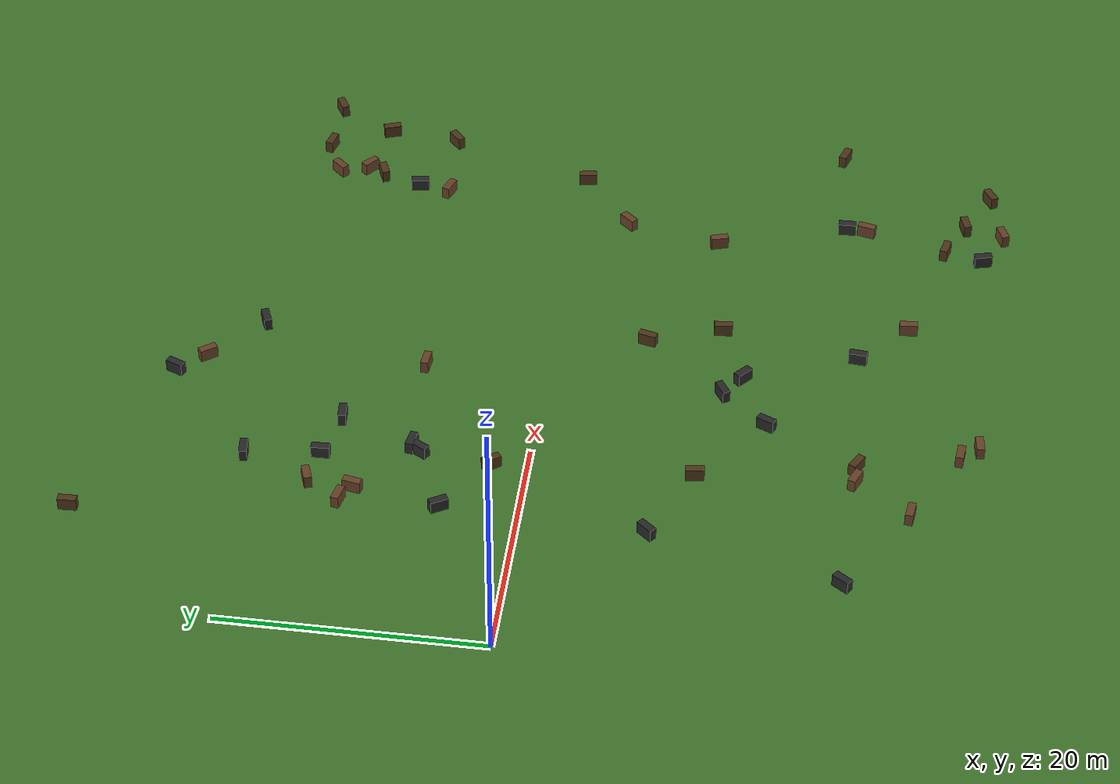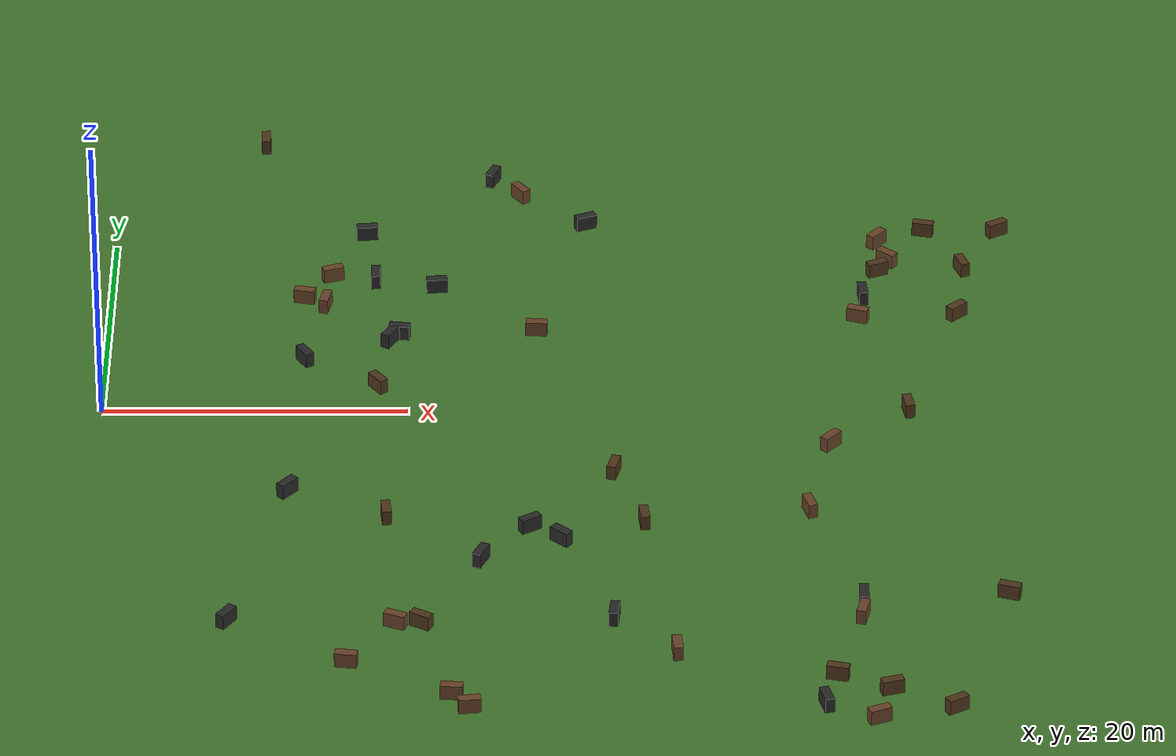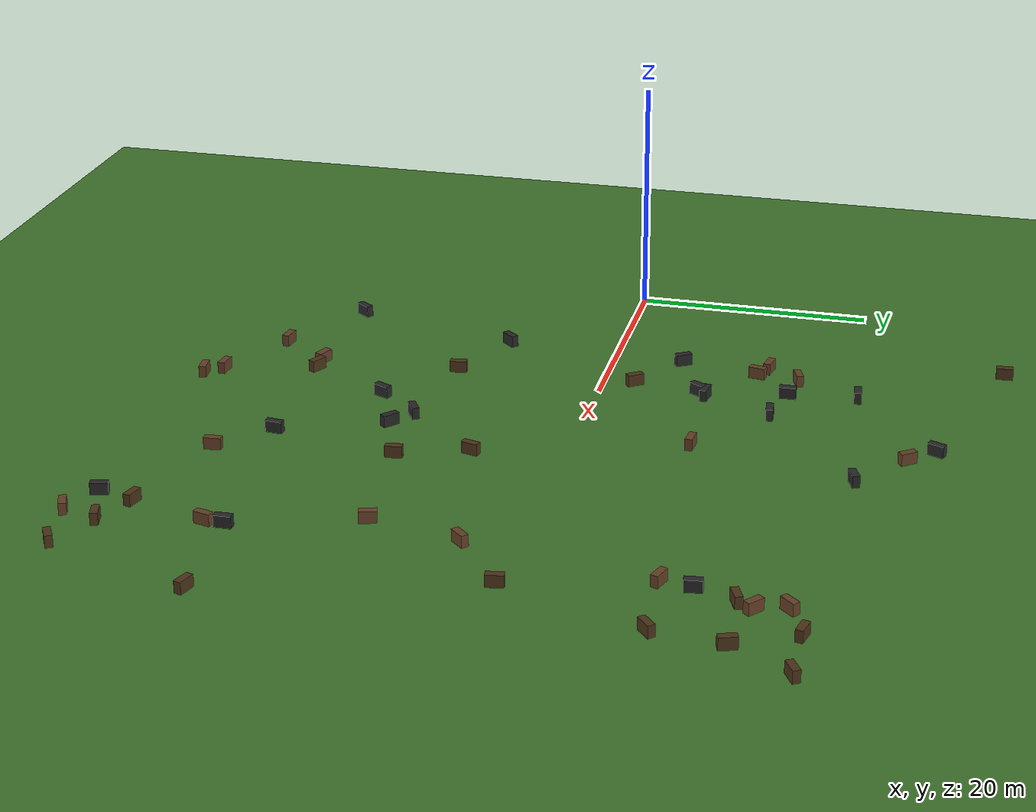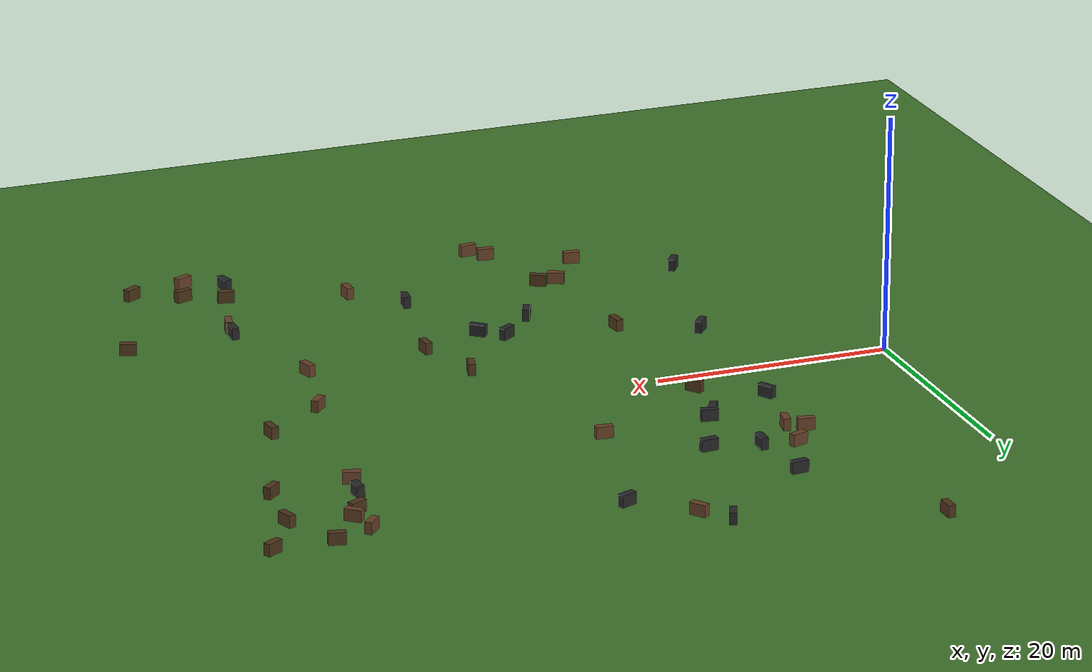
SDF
<?xml version="1.0" encoding="UTF-8"?>
<sdf version="1.9">
  <world name="aeroshepherd">
    <physics type="ode">
      <max_step_size>0.004</max_step_size>
      <real_time_factor>1.0</real_time_factor>
      <real_time_update_rate>250</real_time_update_rate>
      <gravity>0 0 -9.8</gravity>
    </physics>

    <atmosphere type="adiabatic"/>
    <scene>
      <grid>false</grid>
      <ambient>0.7 0.7 0.7 1</ambient>
      <background>0.5 0.7 0.9 1</background>
      <shadows>true</shadows>
      <fog><type>linear</type><color>0.7 0.8 0.85 1</color><start>10.0</start><end>100.0</end></fog>
    </scene>

    <light type="directional" name="sunUTC">
      <cast_shadows>true</cast_shadows>
      <diffuse>0.9 0.9 0.9 1</diffuse>
      <specular>0.2 0.2 0.2 1</specular>
      <direction>0.001 0.625 -0.78</direction>
      <pose>0 0 500 0 0 0</pose>
    </light>

    <model name="ground_plane">
      <static>true</static>
      <link name="link">
        <collision name="collision">
          <geometry><plane><normal>0 0 1</normal><size>200 200</size></plane></geometry>
        </collision>
        <visual name="visual">
          <geometry><plane><normal>0 0 1</normal><size>200 200</size></plane></geometry>
          <material>
            <ambient>0.2 0.4 0.15 1</ambient>
            <diffuse>0.25 0.45 0.17 1</diffuse>
          </material>
        </visual>
      </link>
    </model>

    <spherical_coordinates>
      <surface_model>EARTH_WGS84</surface_model>
      <world_frame_orientation>ENU</world_frame_orientation>
      <latitude_deg>47.397971057728974</latitude_deg>
      <longitude_deg>8.546163739800146</longitude_deg>
      <elevation>0</elevation>
    </spherical_coordinates>

    <model name="stado_krow">
      <static>true</static>
      <plugin filename="gz-sim-thermal-system" name="gz::sim::systems::Thermal">
        <temperature>310.15</temperature>
      </plugin>

      <link name="krowa_1">
        <pose>16.6 -28.4 0.5 0 0 -0.14</pose>
        <visual name="visual_1">
          <geometry>
            <box><size>1.4 0.6 1.0</size></box>
          </geometry>
          <material>
            <ambient>0.40 0.25 0.15 1.0</ambient>
            <diffuse>0.40 0.25 0.15 1.0</diffuse>
          </material>
        </visual>
      </link>
      <link name="krowa_2">
        <pose>50.2 13.4 0.5 0 0 -1.47</pose>
        <visual name="visual_2">
          <geometry>
            <box><size>1.4 0.6 1.0</size></box>
          </geometry>
          <material>
            <ambient>0.15 0.15 0.15 1.0</ambient>
            <diffuse>0.15 0.15 0.15 1.0</diffuse>
          </material>
        </visual>
      </link>
      <link name="krowa_3">
        <pose>59.6 21.6 0.5 0 0 0.51</pose>
        <visual name="visual_3">
          <geometry>
            <box><size>1.4 0.6 1.0</size></box>
          </geometry>
          <material>
            <ambient>0.30 0.20 0.10 1.0</ambient>
            <diffuse>0.30 0.20 0.10 1.0</diffuse>
          </material>
        </visual>
      </link>
      <link name="krowa_4">
        <pose>12.9 13.3 0.5 0 0 -0.21</pose>
        <visual name="visual_4">
          <geometry>
            <box><size>1.4 0.6 1.0</size></box>
          </geometry>
          <material>
            <ambient>0.40 0.25 0.15 1.0</ambient>
            <diffuse>0.40 0.25 0.15 1.0</diffuse>
          </material>
        </visual>
      </link>
      <link name="krowa_5">
        <pose>46.3 -32.8 0.5 0 0 -1.31</pose>
        <visual name="visual_5">
          <geometry>
            <box><size>1.4 0.6 1.0</size></box>
          </geometry>
          <material>
            <ambient>0.15 0.15 0.15 1.0</ambient>
            <diffuse>0.15 0.15 0.15 1.0</diffuse>
          </material>
        </visual>
      </link>
      <link name="krowa_6">
        <pose>9.7 32.8 0.5 0 0 1.6</pose>
        <visual name="visual_6">
          <geometry>
            <box><size>1.4 0.6 1.0</size></box>
          </geometry>
          <material>
            <ambient>0.30 0.20 0.10 1.0</ambient>
            <diffuse>0.30 0.20 0.10 1.0</diffuse>
          </material>
        </visual>
      </link>
      <link name="krowa_7">
        <pose>14.3 12.5 0.5 0 0 1.37</pose>
        <visual name="visual_7">
          <geometry>
            <box><size>1.4 0.6 1.0</size></box>
          </geometry>
          <material>
            <ambient>0.40 0.25 0.15 1.0</ambient>
            <diffuse>0.40 0.25 0.15 1.0</diffuse>
          </material>
        </visual>
      </link>
      <link name="krowa_8">
        <pose>30.0 -15.0 0.5 0 0 2.42</pose>
        <visual name="visual_8">
          <geometry>
            <box><size>1.4 0.6 1.0</size></box>
          </geometry>
          <material>
            <ambient>0.15 0.15 0.15 1.0</ambient>
            <diffuse>0.15 0.15 0.15 1.0</diffuse>
          </material>
        </visual>
      </link>
      <link name="krowa_9">
        <pose>21.2 -24.2 0.5 0 0 2.62</pose>
        <visual name="visual_9">
          <geometry>
            <box><size>1.4 0.6 1.0</size></box>
          </geometry>
          <material>
            <ambient>0.30 0.20 0.10 1.0</ambient>
            <diffuse>0.30 0.20 0.10 1.0</diffuse>
          </material>
        </visual>
      </link>
      <link name="krowa_10">
        <pose>52.0 17.9 0.5 0 0 2.43</pose>
        <visual name="visual_10">
          <geometry>
            <box><size>1.4 0.6 1.0</size></box>
          </geometry>
          <material>
            <ambient>0.40 0.25 0.15 1.0</ambient>
            <diffuse>0.40 0.25 0.15 1.0</diffuse>
          </material>
        </visual>
      </link>
      <link name="krowa_11">
        <pose>24.9 -17.2 0.5 0 0 -2.0</pose>
        <visual name="visual_11">
          <geometry>
            <box><size>1.4 0.6 1.0</size></box>
          </geometry>
          <material>
            <ambient>0.15 0.15 0.15 1.0</ambient>
            <diffuse>0.15 0.15 0.15 1.0</diffuse>
          </material>
        </visual>
      </link>
      <link name="krowa_12">
        <pose>54.6 21.6 0.5 0 0 -0.23</pose>
        <visual name="visual_12">
          <geometry>
            <box><size>1.4 0.6 1.0</size></box>
          </geometry>
          <material>
            <ambient>0.30 0.20 0.10 1.0</ambient>
            <diffuse>0.30 0.20 0.10 1.0</diffuse>
          </material>
        </visual>
      </link>
      <link name="krowa_13">
        <pose>27.3 26.2 0.5 0 0 -0.93</pose>
        <visual name="visual_13">
          <geometry>
            <box><size>1.4 0.6 1.0</size></box>
          </geometry>
          <material>
            <ambient>0.40 0.25 0.15 1.0</ambient>
            <diffuse>0.40 0.25 0.15 1.0</diffuse>
          </material>
        </visual>
      </link>
      <link name="krowa_14">
        <pose>16.9 21.2 0.5 0 0 -3.04</pose>
        <visual name="visual_14">
          <geometry>
            <box><size>1.4 0.6 1.0</size></box>
          </geometry>
          <material>
            <ambient>0.15 0.15 0.15 1.0</ambient>
            <diffuse>0.15 0.15 0.15 1.0</diffuse>
          </material>
        </visual>
      </link>
      <link name="krowa_15">
        <pose>54.3 -33.2 0.5 0 0 -2.61</pose>
        <visual name="visual_15">
          <geometry>
            <box><size>1.4 0.6 1.0</size></box>
          </geometry>
          <material>
            <ambient>0.30 0.20 0.10 1.0</ambient>
            <diffuse>0.30 0.20 0.10 1.0</diffuse>
          </material>
        </visual>
      </link>
      <link name="krowa_16">
        <pose>14.7 16.0 0.5 0 0 -2.8</pose>
        <visual name="visual_16">
          <geometry>
            <box><size>1.4 0.6 1.0</size></box>
          </geometry>
          <material>
            <ambient>0.40 0.25 0.15 1.0</ambient>
            <diffuse>0.40 0.25 0.15 1.0</diffuse>
          </material>
        </visual>
      </link>
      <link name="krowa_17">
        <pose>33.3 -23.6 0.5 0 0 1.46</pose>
        <visual name="visual_17">
          <geometry>
            <box><size>1.4 0.6 1.0</size></box>
          </geometry>
          <material>
            <ambient>0.15 0.15 0.15 1.0</ambient>
            <diffuse>0.15 0.15 0.15 1.0</diffuse>
          </material>
        </visual>
      </link>
      <link name="krowa_18">
        <pose>47.1 -29.8 0.5 0 0 2.9</pose>
        <visual name="visual_18">
          <geometry>
            <box><size>1.4 0.6 1.0</size></box>
          </geometry>
          <material>
            <ambient>0.30 0.20 0.10 1.0</ambient>
            <diffuse>0.30 0.20 0.10 1.0</diffuse>
          </material>
        </visual>
      </link>
      <link name="krowa_19">
        <pose>47.5 -4.2 0.5 0 0 0.84</pose>
        <visual name="visual_19">
          <geometry>
            <box><size>1.4 0.6 1.0</size></box>
          </geometry>
          <material>
            <ambient>0.40 0.25 0.15 1.0</ambient>
            <diffuse>0.40 0.25 0.15 1.0</diffuse>
          </material>
        </visual>
      </link>
      <link name="krowa_20">
        <pose>9.0 -23.9 0.5 0 0 0.96</pose>
        <visual name="visual_20">
          <geometry>
            <box><size>1.4 0.6 1.0</size></box>
          </geometry>
          <material>
            <ambient>0.15 0.15 0.15 1.0</ambient>
            <diffuse>0.15 0.15 0.15 1.0</diffuse>
          </material>
        </visual>
      </link>
      <link name="krowa_21">
        <pose>58.2 -21.1 0.5 0 0 2.83</pose>
        <visual name="visual_21">
          <geometry>
            <box><size>1.4 0.6 1.0</size></box>
          </geometry>
          <material>
            <ambient>0.30 0.20 0.10 1.0</ambient>
            <diffuse>0.30 0.20 0.10 1.0</diffuse>
          </material>
        </visual>
      </link>
      <link name="krowa_22">
        <pose>23.2 -31.8 0.5 0 0 -0.11</pose>
        <visual name="visual_22">
          <geometry>
            <box><size>1.4 0.6 1.0</size></box>
          </geometry>
          <material>
            <ambient>0.40 0.25 0.15 1.0</ambient>
            <diffuse>0.40 0.25 0.15 1.0</diffuse>
          </material>
        </visual>
      </link>
      <link name="krowa_23">
        <pose>49.0 -21.8 0.5 0 0 1.58</pose>
        <visual name="visual_23">
          <geometry>
            <box><size>1.4 0.6 1.0</size></box>
          </geometry>
          <material>
            <ambient>0.15 0.15 0.15 1.0</ambient>
            <diffuse>0.15 0.15 0.15 1.0</diffuse>
          </material>
        </visual>
      </link>
      <link name="krowa_24">
        <pose>50.4 -31.3 0.5 0 0 0.29</pose>
        <visual name="visual_24">
          <geometry>
            <box><size>1.4 0.6 1.0</size></box>
          </geometry>
          <material>
            <ambient>0.30 0.20 0.10 1.0</ambient>
            <diffuse>0.30 0.20 0.10 1.0</diffuse>
          </material>
        </visual>
      </link>
      <link name="krowa_25">
        <pose>37.2 -27.3 0.5 0 0 -1.5</pose>
        <visual name="visual_25">
          <geometry>
            <box><size>1.4 0.6 1.0</size></box>
          </geometry>
          <material>
            <ambient>0.40 0.25 0.15 1.0</ambient>
            <diffuse>0.40 0.25 0.15 1.0</diffuse>
          </material>
        </visual>
      </link>
      <link name="krowa_26">
        <pose>17.6 15.5 0.5 0 0 -1.56</pose>
        <visual name="visual_26">
          <geometry>
            <box><size>1.4 0.6 1.0</size></box>
          </geometry>
          <material>
            <ambient>0.15 0.15 0.15 1.0</ambient>
            <diffuse>0.15 0.15 0.15 1.0</diffuse>
          </material>
        </visual>
      </link>
      <link name="krowa_27">
        <pose>57.0 16.9 0.5 0 0 1.91</pose>
        <visual name="visual_27">
          <geometry>
            <box><size>1.4 0.6 1.0</size></box>
          </geometry>
          <material>
            <ambient>0.30 0.20 0.10 1.0</ambient>
            <diffuse>0.30 0.20 0.10 1.0</diffuse>
          </material>
        </visual>
      </link>
      <link name="krowa_28">
        <pose>45.9 -11.7 0.5 0 0 1.87</pose>
        <visual name="visual_28">
          <geometry>
            <box><size>1.4 0.6 1.0</size></box>
          </geometry>
          <material>
            <ambient>0.40 0.25 0.15 1.0</ambient>
            <diffuse>0.40 0.25 0.15 1.0</diffuse>
          </material>
        </visual>
      </link>
      <link name="krowa_29">
        <pose>25.4 28.3 0.5 0 0 1.17</pose>
        <visual name="visual_29">
          <geometry>
            <box><size>1.4 0.6 1.0</size></box>
          </geometry>
          <material>
            <ambient>0.15 0.15 0.15 1.0</ambient>
            <diffuse>0.15 0.15 0.15 1.0</diffuse>
          </material>
        </visual>
      </link>
      <link name="krowa_30">
        <pose>51.3 16.6 0.5 0 0 0.4</pose>
        <visual name="visual_30">
          <geometry>
            <box><size>1.4 0.6 1.0</size></box>
          </geometry>
          <material>
            <ambient>0.30 0.20 0.10 1.0</ambient>
            <diffuse>0.30 0.20 0.10 1.0</diffuse>
          </material>
        </visual>
      </link>
      <link name="krowa_31">
        <pose>19.6 -24.2 0.5 0 0 2.74</pose>
        <visual name="visual_31">
          <geometry>
            <box><size>1.4 0.6 1.0</size></box>
          </geometry>
          <material>
            <ambient>0.40 0.25 0.15 1.0</ambient>
            <diffuse>0.40 0.25 0.15 1.0</diffuse>
          </material>
        </visual>
      </link>
      <link name="krowa_32">
        <pose>31.7 22.5 0.5 0 0 0.39</pose>
        <visual name="visual_32">
          <geometry>
            <box><size>1.4 0.6 1.0</size></box>
          </geometry>
          <material>
            <ambient>0.15 0.15 0.15 1.0</ambient>
            <diffuse>0.15 0.15 0.15 1.0</diffuse>
          </material>
        </visual>
      </link>
      <link name="krowa_33">
        <pose>52.7 -0.2 0.5 0 0 -1.41</pose>
        <visual name="visual_33">
          <geometry>
            <box><size>1.4 0.6 1.0</size></box>
          </geometry>
          <material>
            <ambient>0.30 0.20 0.10 1.0</ambient>
            <diffuse>0.30 0.20 0.10 1.0</diffuse>
          </material>
        </visual>
      </link>
      <link name="krowa_34">
        <pose>28.4 9.3 0.5 0 0 3.05</pose>
        <visual name="visual_34">
          <geometry>
            <box><size>1.4 0.6 1.0</size></box>
          </geometry>
          <material>
            <ambient>0.40 0.25 0.15 1.0</ambient>
            <diffuse>0.40 0.25 0.15 1.0</diffuse>
          </material>
        </visual>
      </link>
      <link name="krowa_35">
        <pose>19.3 8.9 0.5 0 0 2.98</pose>
        <visual name="visual_35">
          <geometry>
            <box><size>1.4 0.6 1.0</size></box>
          </geometry>
          <material>
            <ambient>0.15 0.15 0.15 1.0</ambient>
            <diffuse>0.15 0.15 0.15 1.0</diffuse>
          </material>
        </visual>
      </link>
      <link name="krowa_36">
        <pose>18.0 2.7 0.5 0 0 2.19</pose>
        <visual name="visual_36">
          <geometry>
            <box><size>1.4 0.6 1.0</size></box>
          </geometry>
          <material>
            <ambient>0.30 0.20 0.10 1.0</ambient>
            <diffuse>0.30 0.20 0.10 1.0</diffuse>
          </material>
        </visual>
      </link>
      <link name="krowa_37">
        <pose>48.9 -23.4 0.5 0 0 -1.82</pose>
        <visual name="visual_37">
          <geometry>
            <box><size>1.4 0.6 1.0</size></box>
          </geometry>
          <material>
            <ambient>0.40 0.25 0.15 1.0</ambient>
            <diffuse>0.40 0.25 0.15 1.0</diffuse>
          </material>
        </visual>
      </link>
      <link name="krowa_38">
        <pose>21.7 14.6 0.5 0 0 -3.06</pose>
        <visual name="visual_38">
          <geometry>
            <box><size>1.4 0.6 1.0</size></box>
          </geometry>
          <material>
            <ambient>0.15 0.15 0.15 1.0</ambient>
            <diffuse>0.15 0.15 0.15 1.0</diffuse>
          </material>
        </visual>
      </link>
      <link name="krowa_39">
        <pose>56.4 11.3 0.5 0 0 -2.41</pose>
        <visual name="visual_39">
          <geometry>
            <box><size>1.4 0.6 1.0</size></box>
          </geometry>
          <material>
            <ambient>0.30 0.20 0.10 1.0</ambient>
            <diffuse>0.30 0.20 0.10 1.0</diffuse>
          </material>
        </visual>
      </link>
      <link name="krowa_40">
        <pose>49.5 -34.3 0.5 0 0 0.39</pose>
        <visual name="visual_40">
          <geometry>
            <box><size>1.4 0.6 1.0</size></box>
          </geometry>
          <material>
            <ambient>0.40 0.25 0.15 1.0</ambient>
            <diffuse>0.40 0.25 0.15 1.0</diffuse>
          </material>
        </visual>
      </link>
      <link name="krowa_41">
        <pose>28.0 -13.6 0.5 0 0 0.55</pose>
        <visual name="visual_41">
          <geometry>
            <box><size>1.4 0.6 1.0</size></box>
          </geometry>
          <material>
            <ambient>0.15 0.15 0.15 1.0</ambient>
            <diffuse>0.15 0.15 0.15 1.0</diffuse>
          </material>
        </visual>
      </link>
      <link name="krowa_42">
        <pose>35.3 -13.0 0.5 0 0 -1.46</pose>
        <visual name="visual_42">
          <geometry>
            <box><size>1.4 0.6 1.0</size></box>
          </geometry>
          <material>
            <ambient>0.30 0.20 0.10 1.0</ambient>
            <diffuse>0.30 0.20 0.10 1.0</diffuse>
          </material>
        </visual>
      </link>
      <link name="krowa_43">
        <pose>49.8 10.9 0.5 0 0 -0.35</pose>
        <visual name="visual_43">
          <geometry>
            <box><size>1.4 0.6 1.0</size></box>
          </geometry>
          <material>
            <ambient>0.40 0.25 0.15 1.0</ambient>
            <diffuse>0.40 0.25 0.15 1.0</diffuse>
          </material>
        </visual>
      </link>
      <link name="krowa_44">
        <pose>13.1 5.9 0.5 0 0 -1.03</pose>
        <visual name="visual_44">
          <geometry>
            <box><size>1.4 0.6 1.0</size></box>
          </geometry>
          <material>
            <ambient>0.15 0.15 0.15 1.0</ambient>
            <diffuse>0.15 0.15 0.15 1.0</diffuse>
          </material>
        </visual>
      </link>
      <link name="krowa_45">
        <pose>33.4 -7.3 0.5 0 0 1.31</pose>
        <visual name="visual_45">
          <geometry>
            <box><size>1.4 0.6 1.0</size></box>
          </geometry>
          <material>
            <ambient>0.30 0.20 0.10 1.0</ambient>
            <diffuse>0.30 0.20 0.10 1.0</diffuse>
          </material>
        </visual>
      </link>
      <link name="krowa_46">
        <pose>24.3 -33.2 0.5 0 0 0.12</pose>
        <visual name="visual_46">
          <geometry>
            <box><size>1.4 0.6 1.0</size></box>
          </geometry>
          <material>
            <ambient>0.40 0.25 0.15 1.0</ambient>
            <diffuse>0.40 0.25 0.15 1.0</diffuse>
          </material>
        </visual>
      </link>
      <link name="krowa_47">
        <pose>12.4 -9.5 0.5 0 0 -2.28</pose>
        <visual name="visual_47">
          <geometry>
            <box><size>1.4 0.6 1.0</size></box>
          </geometry>
          <material>
            <ambient>0.15 0.15 0.15 1.0</ambient>
            <diffuse>0.15 0.15 0.15 1.0</diffuse>
          </material>
        </visual>
      </link>
      <link name="krowa_48">
        <pose>18.8 -12.4 0.5 0 0 1.68</pose>
        <visual name="visual_48">
          <geometry>
            <box><size>1.4 0.6 1.0</size></box>
          </geometry>
          <material>
            <ambient>0.30 0.20 0.10 1.0</ambient>
            <diffuse>0.30 0.20 0.10 1.0</diffuse>
          </material>
        </visual>
      </link>
      <link name="krowa_49">
        <pose>51.4 20.3 0.5 0 0 0.83</pose>
        <visual name="visual_49">
          <geometry>
            <box><size>1.4 0.6 1.0</size></box>
          </geometry>
          <material>
            <ambient>0.40 0.25 0.15 1.0</ambient>
            <diffuse>0.40 0.25 0.15 1.0</diffuse>
          </material>
        </visual>
      </link>
      <link name="krowa_50">
        <pose>18.7 8.2 0.5 0 0 1.04</pose>
        <visual name="visual_50">
          <geometry>
            <box><size>1.4 0.6 1.0</size></box>
          </geometry>
          <material>
            <ambient>0.15 0.15 0.15 1.0</ambient>
            <diffuse>0.15 0.15 0.15 1.0</diffuse>
          </material>
        </visual>
      </link>
    </model>
  </world>
</sdf>
